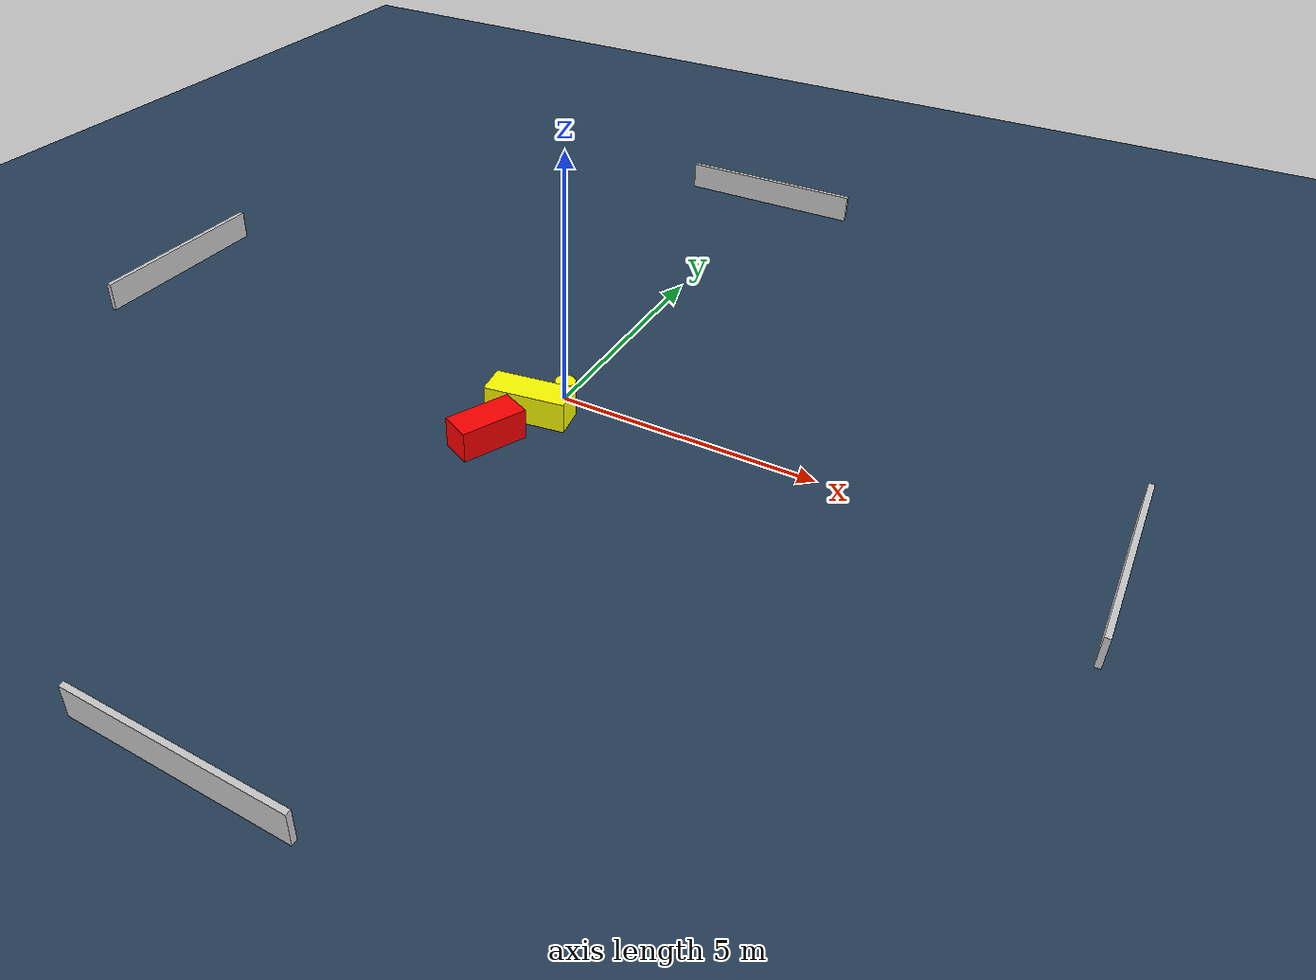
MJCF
<?xml version="1.0" ?>
<mujoco model="generated_environment">
  <option timestep="0.01" integrator="RK4" cone="elliptic"/>
  <default>
    <geom density="1"/>
  </default>
  <asset>
    <texture builtin="gradient" height="3072" name="skybox" rgb1="0.3 0.5 0.7" rgb2="0 0 0" type="skybox" width="512"/>
    <texture builtin="checker" height="300" name="groundplane" rgb1="0.2 0.3 0.4" rgb2="0.1 0.2 0.3" type="2d" width="300"/>
    <material name="groundplane" reflectance="0.2" texrepeat="5 5" texture="groundplane"/>
  </asset>
  <worldbody>
    <light dir="0 0 -1" directional="true" pos="0 0 1.5"/>
    <geom condim="3" friction="0.5 0.005 0.001" material="groundplane" name="floor" pos="0 0 0" size="0 0 0.05" type="plane"/>
    <body name="walls">
      <geom name="wall_1" condim="4" pos="-10.0 0.0 0.3" rgba="0.800000011920929 0.800000011920929 0.800000011920929 1.0" size="0.05 2.0 0.3" type="box"/>
      <geom name="wall_2" condim="4" pos="10.0 0.0 0.3" rgba="0.800000011920929 0.800000011920929 0.800000011920929 1.0" size="0.05 2.0 0.3" type="box"/>
      <geom name="wall_3" condim="4" pos="0.0 -10.0 0.3" rgba="0.800000011920929 0.800000011920929 0.800000011920929 1.0" size="2.0 0.05 0.3" type="box"/>
      <geom name="wall_4" condim="4" pos="0.0 10.0 0.3" rgba="0.800000011920929 0.800000011920929 0.800000011920929 1.0" size="2.0 0.05 0.3" type="box"/>
    </body>
    <body name="robot">
      <joint name="joint_x" type="slide" pos="0 0 0" axis="1 0 0"/>
      <joint name="joint_y" type="slide" pos="0 0 0" axis="0 1 0"/>
      <geom name="robot" type="cylinder" pos="0.0 0.0 0.2" size="0.2 0.2 0.0" mass="5.0" friction="1.0 0.005 0.0001" condim="4" rgba="1.0 1.0 0.0 1.0"/>
    </body>
    <body name="obstacle_1_movable">
      <geom name="obstacle_1_movable" condim="4" pos="-0.30114001998896256 -0.7854538339493365 0.3" euler="0 0 8.707373051765046" friction="0.0 0.005 0.001" rgba="1.0 1.0 0.0 1.0" size="0.7895368119263608 0.3114971311192886 0.3" type="box" mass="0.1"/>
      <joint type="free"/>
    </body>
    <body name="obstacle_2_static">
      <geom name="obstacle_2_static" condim="4" pos="-0.5347726284244742 -1.8970353057086293 0.3" euler="0 0 335.39559796439534" friction="0.0 0.005 0.001" rgba="1.0 0.0 0.0 1.0" size="0.30546574467469506 0.6479988460994934 0.3" type="box"/>
    </body>
  </worldbody>
  <actuator>
    <motor name="actuator_x" joint="joint_x" gear="1" ctrlrange="-1 1"/>
    <motor name="actuator_y" joint="joint_y" gear="1" ctrlrange="-1 1"/>
  </actuator>
</mujoco>
